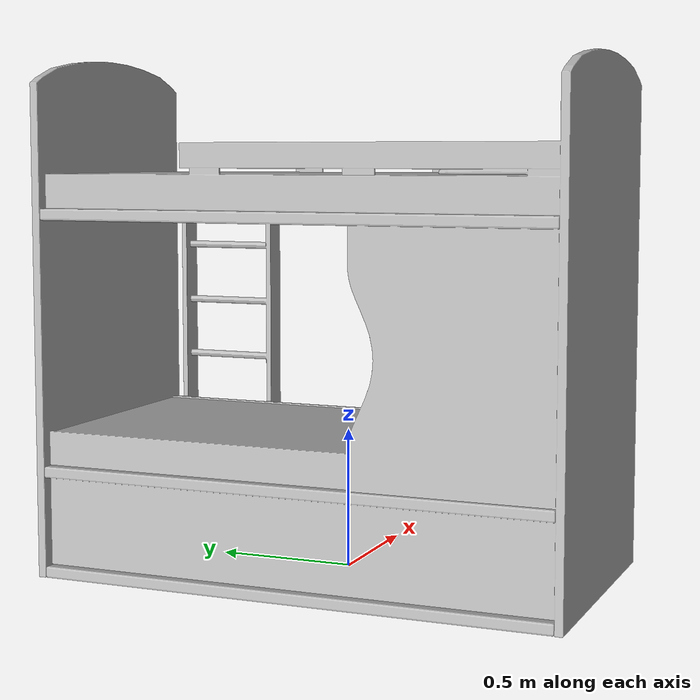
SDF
<?xml version='1.0'?>
<sdf version='1.4'>
  <model name='270'>
    <pose>0 0 0 0 0 0</pose>
    <static>true</static>
    <link name='link'>
      <collision name='collision'>
        <pose>0 0 0 0 0 0</pose>
        <geometry>
          <box>
            <size>1.10097 1.9 2</size>
          </box>
        </geometry>
      </collision>
      <visual name='visual'>
        <pose>0 0 0 0 0 0</pose>
        <geometry>
          <mesh><uri>model://270/270.dae</uri></mesh>
        </geometry>
      </visual>
    </link>
  </model>
</sdf>
